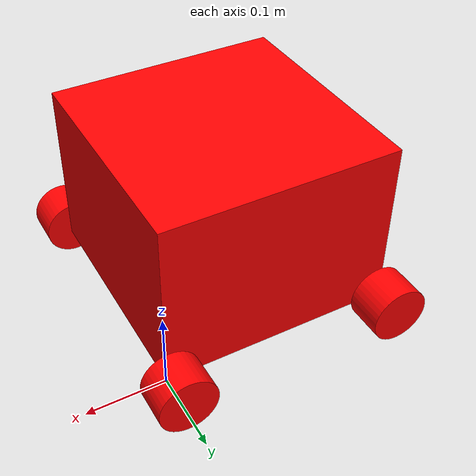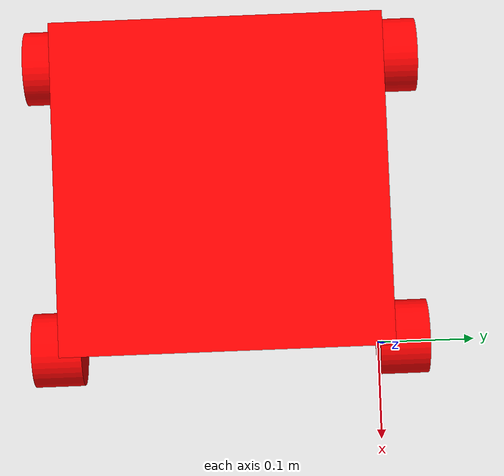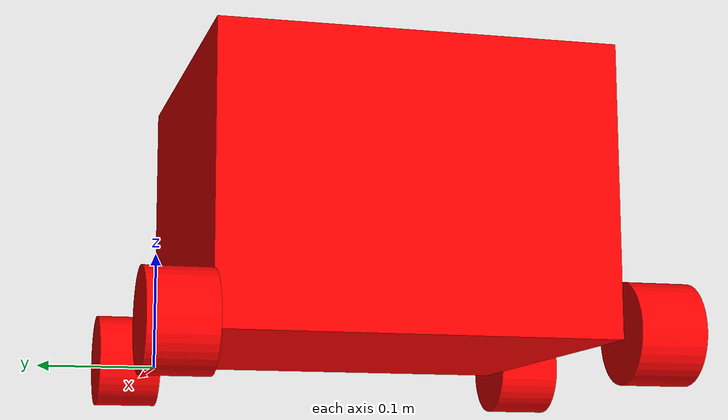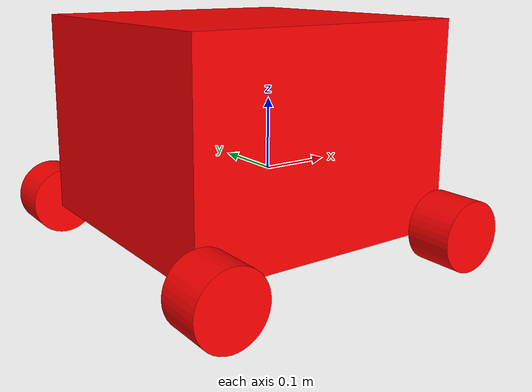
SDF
<?xml version="1.0" encoding="utf-8"?>
<sdf version="1.5">
  <model name="Assem1">
    <pose>0 0 0 0 0 0</pose>
    <plugin name="clock" filename="libclock.so">
      <topic>/gazebo/frc/time</topic>
    </plugin>
    <link name="Box">
      <gravity>1</gravity>
      <self_collide>0</self_collide>
      <pose>-0.1524 -0.1524 0.112215306434483 -1.5707963267949 0 -1.5707963267949</pose>
      <must_be_base_link>1</must_be_base_link>
      <velocity_decay>
        <linear>0</linear>
        <angular>0</angular>
      </velocity_decay>
      <inertial>
        <mass>20.8502862045901</mass>
        <pose>0 0 0 0 0 0</pose>
        <inertia>
          <ixx>0.248938760332727</ixx>
          <ixy>1.40998324127395E-16</ixy>
          <ixz>2.06207631654528E-33</ixz>
          <iyy>0.32284249554608</iyy>
          <iyz>7.04991620636974E-17</iyz>
          <izz>0.248938760332727</izz>
        </inertia>
      </inertial>
      <collision name="Box_collision">
        <pose>-0.145069105676851 -0.0972502325598028 0.090476788751854 0 0 0</pose>
        <geometry>
          <mesh>
            <scale>1 1 1</scale>
            <uri>model://Assem1/meshes/Box_col.STL</uri>
          </mesh>
        </geometry>
        <surface>
          <contact>
            <ode />
          </contact>
          <friction>
            <ode>
              <mu>0.1</mu>
              <mu2>0.1</mu2>
            </ode>
          </friction>
        </surface>
      </collision>
      <visual name="Box_visual">
        <pose>-0.145069105676851 -0.0972502325598028 0.090476788751854 0 0 0</pose>
        <material>
          <ambient>1 0 0 1</ambient>
          <diffuse>1 0 0 1</diffuse>
        </material>
        <geometry>
          <mesh>
            <scale>1 1 1</scale>
            <uri>model://Assem1/meshes/Box.STL</uri>
          </mesh>
        </geometry>
      </visual>
      <sensor name="BoxCamera" type="camera">
        <visualize>1</visualize>
        <always_on>1</always_on>
        <pose>-0.1524 -0.112215306434483 0.1524 0 4.71238898038469 0</pose>
        <camera name="Boxcamera">
          <horizontal_fov>1.5707963267949</horizontal_fov>
          <image>
            <width>320</width>
            <height>240</height>
          </image>
          <clip>
            <near>0.1</near>
            <far>100</far>
          </clip>
        </camera>
      </sensor>
    </link>
    <link name="Front_left">
      <gravity>1</gravity><!--Gravity is not in the working code-->
      <self_collide>0</self_collide>
      <pose>-0.00507999999999992 -0.3302 0.00507999999999997 -1.5707963267949 0 -1.5707963267949</pose>
      <must_be_base_link>0</must_be_base_link><!--This is not in the working code-->
      <velocity_decay><!--The next 2 lines are not in the working code-->
        <linear>0</linear>
        <angular>0</angular>
      </velocity_decay>
      <inertial>
        <mass>0.231666659443376</mass>
        <pose>0 0 0 0 0 0</pose>
        <inertia>
          <ixx>0.0001681448197573</ixx>
          <ixy>1.43430912401728E-21</ixy>
          <ixz>2.86861824803457E-21</ixz>
          <iyy>0.000133893097214146</iyy>
          <iyz>2.15146368602593E-21</iyz>
          <izz>0.000133893097214146</izz>
	<!--Most of the above numbers are off by at least 1 from the working code-->
        </inertia>
      </inertial>
	<kinematic>0</kinematic> <!-- we added this -->
      <collision name="Front_left_collision">
	<laser_retro>0</laser_retro> <!--This was in the working code, but not in this code-->
        <pose>-0.322869105676851 -0.204385538994286 -0.0568432112481461 0 0 0</pose>
        <geometry>
          <mesh>
            <scale>1 1 1</scale><!--This(scale) is not in the working code-->
            <uri>model://Assem1/meshes/Front_left_col.STL</uri>
          </mesh>
        </geometry>
        <surface>
          <contact>
            <ode />
          </contact>
          <friction>
            <ode><!--Only mu and mu2 were in this code, the rest in friction came from the working code-->
              <mu>1.0</mu>
              <mu2>1.0</mu2>
	      <fdir1>0 0 0</fdir1>
              <slip1>0</slip1>
              <slip2>0</slip2>
            </ode>
          </friction>
<!--Everything from here to the end of the collision section was not in this code, and was copied from the working code-->
	  <bounce>
            <restitution_coefficient>0</restitution_coefficient>
            <threshold>1e+06</threshold>
          </bounce>
          <contact>
            <collide_without_contact>0</collide_without_contact>
            <collide_without_contact_bitmask>1</collide_without_contact_bitmask>
            <collide_bitmask>1</collide_bitmask>
            <ode>
              <soft_cfm>0</soft_cfm>
              <soft_erp>0.2</soft_erp>
              <kp>1e+13</kp>
              <kd>1</kd>
              <max_vel>0.01</max_vel>
              <min_depth>0</min_depth>
            </ode>
            <bullet>
              <split_impulse>1</split_impulse>
              <split_impulse_penetration_threshold>-0.01</split_impulse_penetration_threshold>
              <soft_cfm>0</soft_cfm>
              <soft_erp>0.2</soft_erp>
              <kp>1e+13</kp>
              <kd>1</kd>
            </bullet>
          </contact>
        </surface>
      </collision>
      <visual name="Front_left_visual">
        <pose>-0.322869105676851 -0.204385538994286 -0.0568432112481461 0 0 0</pose>
        <!--All poses in working code are 0 or -0-->
	<material>
	  <shader type='pixel'/>
          <ambient>1 0 0 1</ambient>
          <diffuse>1 0 0 1</diffuse>
	  <specular>0.1 0.1 0.1 1</specular>
          <emissive>0 0 0 1</emissive>
        </material><!--Under material in the working code, there is an extra section called script.  There is also 3 lines of code(shader,specular,and emissive) that are not in this code-->
        <geometry>
          <mesh>
            <scale>1 1 1</scale>
            <uri>model://Assem1/meshes/Front_left.STL</uri>
          </mesh>
        </geometry>
      </visual>
<!--In the working code, there are sections called cast_shadows and transperency that I did not put here because I do not believe they pertain to what we're doing-->
    </link>
    <joint name="Box-Front_left" type="revolute">
      <parent>Box</parent>
      <child>Front_left</child>
      <pose>-1.66533453693773E-16 8.32667268468867E-17 5.55111512312578E-17 0 0 3.14159265358979</pose>
<!--Working code does not have any poses-->
      <axis>
        <xyz>0 1 0</xyz>
        <use_parent_model_frame>1</use_parent_model_frame>
        <limit>
          <lower>-1e+16</lower>
          <upper>1e+16</upper>
          <effort>-1</effort>
          <velocity>-1</velocity>
        </limit>
        <dynamics>
          <spring_reference>0</spring_reference>
          <spring_stiffness>0</spring_stiffness>
          <damping>0.2</damping>
          <friction>0</friction>
        </dynamics>
      </axis>
      <physics>
        <ode>
          <limit>
            <cfm>0</cfm>
            <erp>0.2</erp>
          </limit>
          <suspension>
            <cfm>0</cfm>
            <erp>0.2</erp>
          </suspension>
        </ode>
      </physics>
    </joint>
    <link name="Rear_Left">
      <gravity>1</gravity>
      <self_collide>0</self_collide>
      <pose>-0.29972 -0.3302 0.00507999999999992 -1.5707963267949 0 -1.5707963267949</pose>
      <must_be_base_link>0</must_be_base_link>
      <velocity_decay>
        <linear>0</linear>
        <angular>0</angular>
      </velocity_decay>
      <inertial>
        <mass>0.231666659443376</mass>
        <pose>0 0 0 0 0 0</pose>
        <inertia>
          <ixx>0.0001681448197573</ixx>
          <ixy>2.86861824803457E-21</ixy>
          <ixz>2.86861824803457E-21</ixz>
          <iyy>0.000133893097214146</iyy>
          <iyz>2.42533767230482E-21</iyz>
          <izz>0.000133893097214146</izz>
        </inertia>
      </inertial>
	<kinematic>0</kinematic>
      <collision name="Rear_Left_collision">
	<laser_retro>0</laser_retro>
        <pose>-0.322869105676851 -0.204385538994286 0.237796788751854 0 0 0</pose>
        <geometry>
          <mesh>
            <scale>1 1 1</scale>
            <uri>model://Assem1/meshes/Rear_Left_col.STL</uri>
          </mesh>
        </geometry>
        <surface>
          <contact>
            <ode />
          </contact>
          <friction>
            <ode>
              <mu>0.1</mu>
              <mu2>0.1</mu2>
	      <fdir1>0 0 0</fdir1>
              <slip1>0</slip1>
              <slip2>0</slip2>
            </ode>
          </friction>
	  <bounce>
            <restitution_coefficient>0</restitution_coefficient>
            <threshold>1e+06</threshold>
          </bounce>
          <contact>
            <collide_without_contact>0</collide_without_contact>
            <collide_without_contact_bitmask>1</collide_without_contact_bitmask>
            <collide_bitmask>1</collide_bitmask>
            <ode>
              <soft_cfm>0</soft_cfm>
              <soft_erp>0.2</soft_erp>
              <kp>1e+13</kp>
              <kd>1</kd>
              <max_vel>0.01</max_vel>
              <min_depth>0</min_depth>
            </ode>
            <bullet>
              <split_impulse>1</split_impulse>
              <split_impulse_penetration_threshold>-0.01</split_impulse_penetration_threshold>
              <soft_cfm>0</soft_cfm>
              <soft_erp>0.2</soft_erp>
              <kp>1e+13</kp>
              <kd>1</kd>
            </bullet>
          </contact>
        </surface>
      </collision>
      <visual name="Rear_Left_visual">
        <pose>-0.322869105676851 -0.204385538994286 0.237796788751854 0 0 0</pose>
        <material>
         <shader type='pixel'/>
	<ambient>1 0 0 1</ambient>
          <diffuse>1 0 0 1</diffuse>
	  <specular>0.1 0.1 0.1 1</specular>
          <emissive>0 0 0 1</emissive>
        </material>
        <geometry>
          <mesh>
            <scale>1 1 1</scale>
            <uri>model://Assem1/meshes/Rear_Left.STL</uri>
          </mesh>
        </geometry>
      </visual>
    </link>
    <joint name="Box-Rear_Left" type="revolute">
      <parent>Box</parent>
      <child>Rear_Left</child>
      <pose>0 0 0 0 0 0</pose>
      <axis>
        <xyz>0 1 0</xyz>
        <use_parent_model_frame>1</use_parent_model_frame>
        <limit>
          <lower>-1e+16</lower>
          <upper>1e+16</upper>
          <effort>-1</effort>
          <velocity>-1</velocity>
        </limit>
        <dynamics>
          <spring_reference>0</spring_reference>
          <spring_stiffness>0</spring_stiffness>
          <damping>0.2</damping>
          <friction>0</friction>
        </dynamics>
      </axis>
      <physics>
        <ode>
          <limit>
            <cfm>0</cfm>
            <erp>0.2</erp>
          </limit>
          <suspension>
            <cfm>0</cfm>
            <erp>0.2</erp>
          </suspension>
        </ode>
      </physics>
    </joint>
    <link name="Front_Right">
      <gravity>1</gravity>
      <self_collide>0</self_collide>
      <pose>-0.00507999999999993 0.0254 0.00507999999999989 -1.5707963267949 0 -1.5707963267949</pose>
      <must_be_base_link>0</must_be_base_link>
      <velocity_decay>
        <linear>0</linear>
        <angular>0</angular>
      </velocity_decay>
      <inertial>
        <mass>0.231666659443376</mass>
        <pose>0 0 0 0 0 0</pose>
        <inertia>
          <ixx>0.000168144819757299</ixx>
          <ixy>4.040201947287E-21</ixy>
          <ixz>1.18877940367576E-21</ixz>
          <iyy>0.000133893097214146</iyy>
          <iyz>1.4865428224313E-21</iyz>
          <izz>0.000133893097214146</izz>
        </inertia>
      </inertial>
	<kinematic>0</kinematic>
      <collision name="Front_Right_collision">
	<laser_retro>0</laser_retro>
        <pose>0.0327308943231488 -0.204385538994286 -0.0568432112481461 0 0 0</pose>
        <geometry>
          <mesh>
            <scale>1 1 1</scale>
            <uri>model://Assem1/meshes/Front_Right_col.STL</uri>
          </mesh>
        </geometry>
        <surface>
          <contact>
            <ode />
          </contact>
          <friction>
            <ode>
              <mu>0.1</mu>
              <mu2>0.1</mu2>
	      <fdir1>0 0 0</fdir1>
              <slip1>0</slip1>
              <slip2>0</slip2>
            </ode>
          </friction>
	  <bounce>
            <restitution_coefficient>0</restitution_coefficient>
            <threshold>1e+06</threshold>
          </bounce>
          <contact>
            <collide_without_contact>0</collide_without_contact>
            <collide_without_contact_bitmask>1</collide_without_contact_bitmask>
            <collide_bitmask>1</collide_bitmask>
            <ode>
              <soft_cfm>0</soft_cfm>
              <soft_erp>0.2</soft_erp>
              <kp>1e+13</kp>
              <kd>1</kd>
              <max_vel>0.01</max_vel>
              <min_depth>0</min_depth>
            </ode>
            <bullet>
              <split_impulse>1</split_impulse>
              <split_impulse_penetration_threshold>-0.01</split_impulse_penetration_threshold>
              <soft_cfm>0</soft_cfm>
              <soft_erp>0.2</soft_erp>
              <kp>1e+13</kp>
              <kd>1</kd>
            </bullet>
          </contact>
        </surface>
      </collision>
      <visual name="Front_Right_visual">
        <pose>0.0327308943231488 -0.204385538994286 -0.0568432112481461 0 0 0</pose>
        <material>
	  <shader type='pixel'/>
          <ambient>1 0 0 1</ambient>
          <diffuse>1 0 0 1</diffuse>
	  <specular>0.1 0.1 0.1 1</specular>
          <emissive>0 0 0 1</emissive>
        </material>
        <geometry>
          <mesh>
            <scale>1 1 1</scale>
            <uri>model://Assem1/meshes/Front_Right.STL</uri>
          </mesh>
        </geometry>
      </visual>
    </link>
    <joint name="Box-Front_Right" type="revolute">
      <parent>Box</parent>
      <child>Front_Right</child>
      <pose>-2.08166817117217E-17 -8.32667268468867E-17 -5.55111512312578E-17 0 0 0</pose>
      <axis>
        <xyz>0 -1 0</xyz>
        <use_parent_model_frame>1</use_parent_model_frame>
        <limit>
          <lower>-1e+16</lower>
          <upper>1e+16</upper>
          <effort>-1</effort>
          <velocity>-1</velocity>
        </limit>
        <dynamics>
          <spring_reference>0</spring_reference>
          <spring_stiffness>0</spring_stiffness>
          <damping>0.2</damping>
          <friction>0</friction>
        </dynamics>
      </axis>
      <physics>
        <ode>
          <limit>
            <cfm>0</cfm>
            <erp>0.2</erp>
          </limit>
          <suspension>
            <cfm>0</cfm>
            <erp>0.2</erp>
          </suspension>
        </ode>
      </physics>
    </joint>
    <link name="Rear_Right">
      <gravity>1</gravity>
      <self_collide>0</self_collide>
      <pose>-0.29972 0.0253999999999999 0.00507999999999992 -1.5707963267949 0 -1.5707963267949</pose>
      <must_be_base_link>0</must_be_base_link>
      <velocity_decay>
        <linear>0</linear>
        <angular>0</angular>
      </velocity_decay>
      <inertial>
        <mass>0.231666659443376</mass>
        <pose>0 0 0 0 0 0</pose>
        <inertia>
          <ixx>0.000168144819757299</ixx>
          <ixy>4.48221601255396E-23</ixy>
          <ixz>2.20405190779179E-36</ixz>
          <iyy>0.000133893097214146</iyy>
          <iyz>5.85952687782897E-22</iyz>
          <izz>0.000133893097214146</izz>
        </inertia>
      </inertial>
	<kinematic>0</kinematic>
      <collision name="Rear_Right_collision">
	<laser_retro>0</laser_retro>
        <pose>0.0327308943231488 -0.204385538994286 0.237796788751854 0 0 0</pose>
        <geometry>
          <mesh>
            <scale>1 1 1</scale>
            <uri>model://Assem1/meshes/Rear_Right_col.STL</uri>
          </mesh>
        </geometry>
        <surface>
          <contact>
            <ode />
          </contact>
          <friction>
            <ode>
              <mu>0.1</mu>
              <mu2>0.1</mu2>
	      <fdir1>0 0 0</fdir1>
              <slip1>0</slip1>
              <slip2>0</slip2>
            </ode>
          </friction>
 	  <bounce>
            <restitution_coefficient>0</restitution_coefficient>
            <threshold>1e+06</threshold>
          </bounce>
          <contact>
            <collide_without_contact>0</collide_without_contact>
            <collide_without_contact_bitmask>1</collide_without_contact_bitmask>
            <collide_bitmask>1</collide_bitmask>
            <ode>
              <soft_cfm>0</soft_cfm>
              <soft_erp>0.2</soft_erp>
              <kp>1e+13</kp>
              <kd>1</kd>
              <max_vel>0.01</max_vel>
              <min_depth>0</min_depth>
            </ode>
            <bullet>
              <split_impulse>1</split_impulse>
              <split_impulse_penetration_threshold>-0.01</split_impulse_penetration_threshold>
              <soft_cfm>0</soft_cfm>
              <soft_erp>0.2</soft_erp>
              <kp>1e+13</kp>
              <kd>1</kd>
            </bullet>
          </contact>
        </surface>
      </collision>
      <visual name="Rear_Right_visual">
        <pose>0.0327308943231488 -0.204385538994286 0.237796788751854 0 0 0</pose>
        <material>
	 <shader type='pixel'/>
          <ambient>1 0 0 1</ambient>
          <diffuse>1 0 0 1</diffuse>
	  <specular>0.1 0.1 0.1 1</specular>
          <emissive>0 0 0 1</emissive>
        </material>
        <geometry>
          <mesh>
            <scale>1 1 1</scale>
            <uri>model://Assem1/meshes/Rear_Right.STL</uri>
          </mesh>
        </geometry>
      </visual>
    </link>
    <joint name="Box-Rear_Right" type="revolute">
      <parent>Box</parent>
      <child>Rear_Right</child>
      <pose>0 0 0 0 0 0</pose>
      <axis>
        <xyz>0 -1 0</xyz>
        <use_parent_model_frame>1</use_parent_model_frame>
        <limit>
          <lower>-1e+16</lower>
          <upper>1e+16</upper>
          <effort>-1</effort>
          <velocity>-1</velocity>
        </limit>
        <dynamics>
          <spring_reference>0</spring_reference>
          <spring_stiffness>0</spring_stiffness>
          <damping>0.2</damping>
          <friction>0</friction>
        </dynamics>
      </axis>
      <physics>
        <ode>
          <limit>
            <cfm>0</cfm>
            <erp>0.2</erp>
          </limit>
          <suspension>
            <cfm>0</cfm>
            <erp>0.2</erp>
          </suspension>
        </ode>
      </physics>
    </joint>
    <plugin name="Box_gyro" filename="libgyro.so">
      <link>Box</link>
      <topic>/gazebo/frc/simulator/analog/0</topic>
      <units>degrees</units>
      <axis>yaw</axis>
    </plugin>
    <plugin name="Box-Front left_motor" filename="libdc_motor.so">
      <joint>Box-Front_left</joint>
      <topic>/gazebo/frc/simulator/pwm/3</topic>
      <multiplier>20.0</multiplier>
    </plugin>
    <plugin name="Box-Rear Left_motor" filename="libdc_motor.so">
      <joint>Box-Rear_Left</joint>
      <topic>/gazebo/frc/simulator/pwm/4</topic>
      <multiplier>20.0</multiplier>
    </plugin>
    <plugin name="Box-Front Right_motor" filename="libdc_motor.so">
      <joint>Box-Front_Right</joint>
      <topic>/gazebo/frc/simulator/pwm/1</topic>
      <multiplier>20.0</multiplier>
    </plugin>
    <plugin name="Box-Rear Right_motor" filename="libdc_motor.so">
      <joint>Box-Rear_Right</joint>
      <topic>/gazebo/frc/simulator/pwm/2</topic>
      <multiplier>20.0</multiplier>
    </plugin>
  </model>
</sdf>
